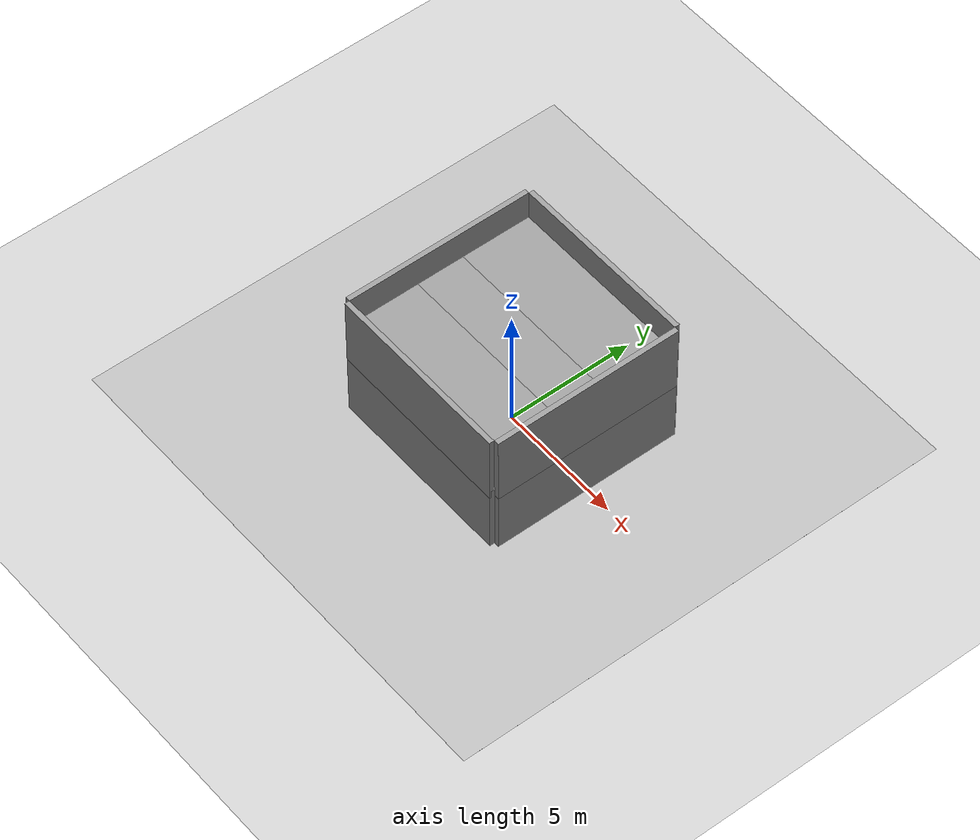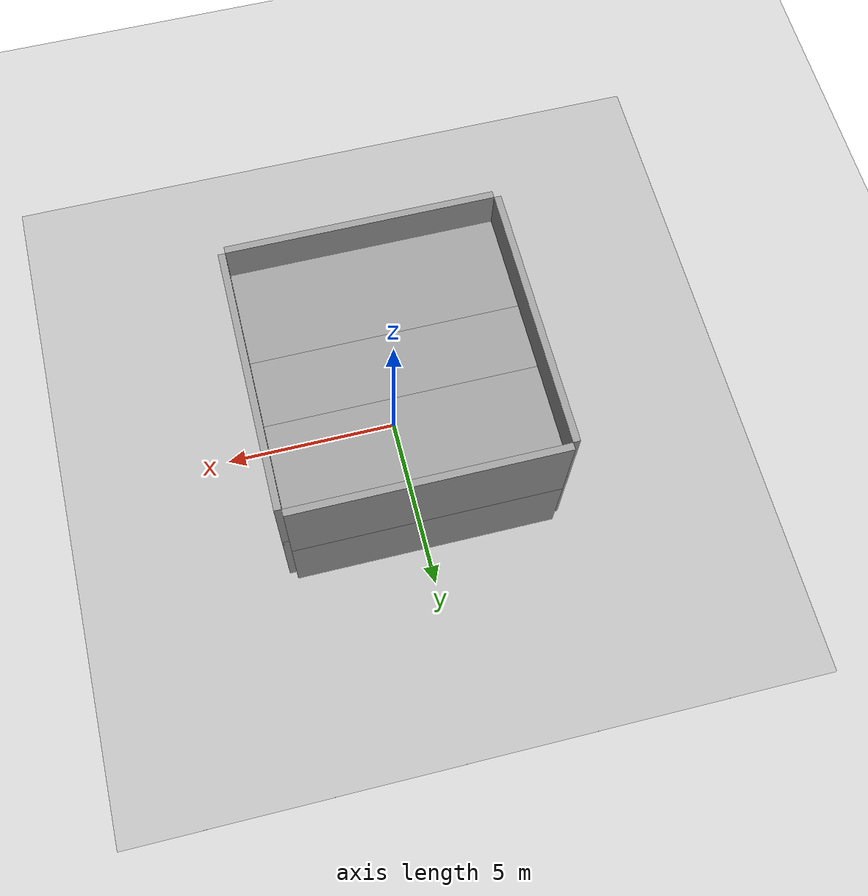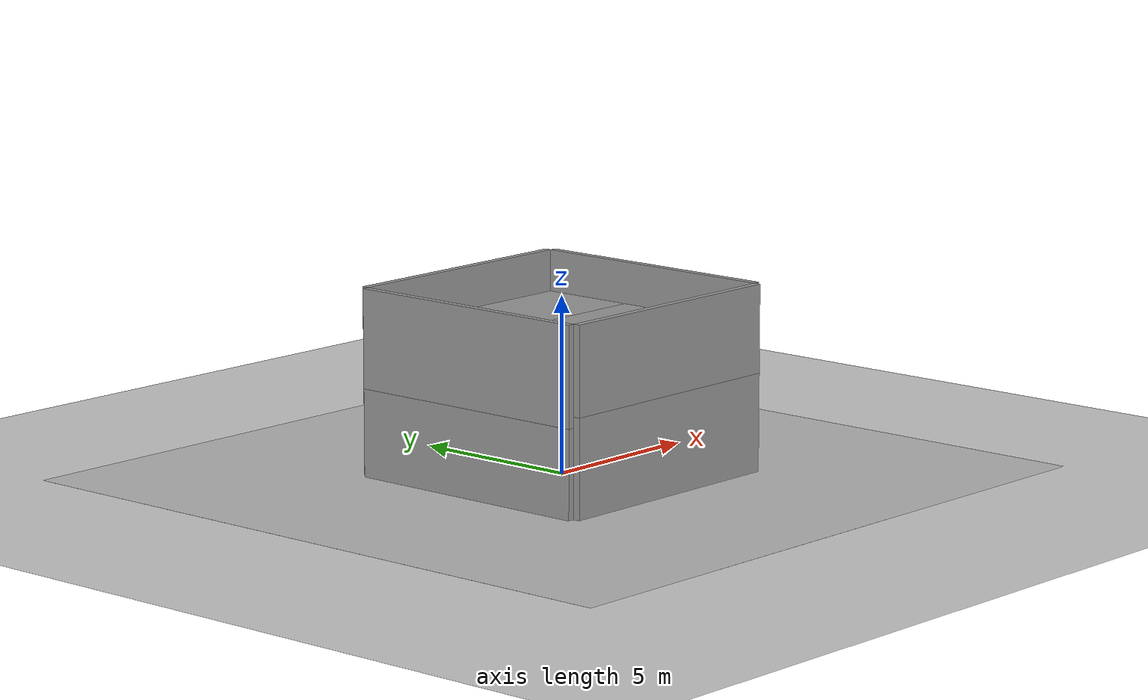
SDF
<sdf version="1.7">
 <world name="default">
  <model name="ground_plane">
   <static>1</static>
   <link name="link">
    <collision name="collision">
     <geometry><plane><normal>0 0 1</normal><size>100 100</size></plane></geometry>
     <surface><friction><ode><mu>100</mu><mu2>50</mu2></ode></friction></surface>
    </collision>
    <visual name="visual">
     <cast_shadows>0</cast_shadows>
     <geometry><plane><normal>0 0 1</normal><size>100 100</size></plane></geometry>
     <material>
      <script><uri>file://media/materials/scripts/gazebo.material</uri><name>Gazebo/Grey</name></script>
     </material>
    </visual>
   </link>
  </model>
  <gravity>0 0 -9.8</gravity>
  <magnetic_field>6e-06 2.3e-05 -4.2e-05</magnetic_field>
  <atmosphere type="adiabatic"/>
  <physics name="default_physics" default="0" type="ode">
   <max_step_size>0.001</max_step_size>
   <real_time_factor>1</real_time_factor>
   <real_time_update_rate>1000</real_time_update_rate>
  </physics>
  <scene><ambient>0.4 0.4 0.4 1</ambient><background>0.7 0.7 0.7 1</background><shadows>1</shadows></scene>
  <spherical_coordinates>
   <surface_model>EARTH_WGS84</surface_model>
   <latitude_deg>0</latitude_deg>
   <longitude_deg>0</longitude_deg>
   <elevation>0</elevation>
   <heading_deg>0</heading_deg>
  </spherical_coordinates>
  <model name="Floor_room">
   <link name="main">
    <pose>0 0 0.01 0 -0 0</pose>
    <collision name="main_Collision"><geometry><box><size>20 20 0.001</size></box></geometry></collision>
    <visual name="main_Visual">
     <geometry><box><size>20 20 0.001</size></box></geometry>
     <material>
      <script>
       <uri>model://Floor_room/materials/scripts</uri>
       <uri>model://Floor_room/materials/textures</uri>
       <name>floor_room</name>
      </script>
     </material>
    </visual>
   </link>
   <static>1</static>
   <pose>-0.11294 0.075022 0 0 -0 0</pose>
  </model>
  <model name="grey_wall">
   <static>1</static>
   <link name="link">
    <pose>0 0 1.4 0 -0 0</pose>
    <collision name="collision"><geometry><box><size>7.5 0.2 2.8</size></box></geometry></collision>
    <visual name="visual">
     <cast_shadows>0</cast_shadows>
     <geometry><box><size>7.5 0.2 2.8</size></box></geometry>
     <material>
      <script>
       <uri>model://grey_wall/materials/scripts</uri>
       <uri>model://grey_wall/materials/textures</uri>
       <name>vrc/grey_wall</name>
      </script>
     </material>
    </visual>
   </link>
   <pose>0 -3.85 0 0 -0 0</pose>
  </model>
  <model name="grey_wall_0">
   <static>1</static>
   <link name="link">
    <pose>0 0 1.4 0 -0 0</pose>
    <collision name="collision"><geometry><box><size>7.5 0.2 2.8</size></box></geometry></collision>
    <visual name="visual">
     <cast_shadows>0</cast_shadows>
     <geometry><box><size>7.5 0.2 2.8</size></box></geometry>
     <material>
      <script>
       <uri>model://grey_wall/materials/scripts</uri>
       <uri>model://grey_wall/materials/textures</uri>
       <name>vrc/grey_wall</name>
      </script>
     </material>
    </visual>
   </link>
   <pose>0 3.85 0 0 -0 0</pose>
  </model>
  <model name="grey_wall_1">
   <static>1</static>
   <link name="link">
    <pose>0 0 1.4 0 -0 0</pose>
    <collision name="collision"><geometry><box><size>7.5 0.2 2.8</size></box></geometry></collision>
    <visual name="visual">
     <cast_shadows>0</cast_shadows>
     <geometry><box><size>7.5 0.2 2.8</size></box></geometry>
     <material>
      <script>
       <uri>model://grey_wall/materials/scripts</uri>
       <uri>model://grey_wall/materials/textures</uri>
       <name>vrc/grey_wall</name>
      </script>
     </material>
    </visual>
   </link>
   <pose>3.85 0 0 0 -0 1.57096</pose>
  </model>
  <model name="grey_wall_2">
   <static>1</static>
   <link name="link">
    <pose>0 0 1.4 0 -0 0</pose>
    <collision name="collision"><geometry><box><size>7.5 0.2 2.8</size></box></geometry></collision>
    <visual name="visual">
     <cast_shadows>0</cast_shadows>
     <geometry><box><size>7.5 0.2 2.8</size></box></geometry>
     <material>
      <script>
       <uri>model://grey_wall/materials/scripts</uri>
       <uri>model://grey_wall/materials/textures</uri>
       <name>vrc/grey_wall</name>
      </script>
     </material>
    </visual>
   </link>
   <pose>-3.85 0 0 0 -0 1.57096</pose>
  </model>
  <light name="user_directional_light_0" type="directional">
   <pose>1.90703 1.7116 1 0 -0 0</pose>
   <diffuse>0.5 0.5 0.5 1</diffuse>
   <specular>0.1 0.1 0.1 1</specular>
   <direction>0.1 0.1 -0.9</direction>
   <attenuation>
    <range>20</range>
    <constant>0.5</constant>
    <linear>0.01</linear>
    <quadratic>0.001</quadratic>
   </attenuation>
   <spot><inner_angle>0</inner_angle><outer_angle>0</outer_angle><falloff>0</falloff></spot>
  </light>
  <light name="user_spot_light_0" type="spot">
   <pose>0.589804 2.02287 1 0 -0 0</pose>
   <diffuse>0.5 0.5 0.5 1</diffuse>
   <specular>0.1 0.1 0.1 1</specular>
   <direction>0 0 -1</direction>
   <attenuation>
    <range>20</range>
    <constant>0.5</constant>
    <linear>0.01</linear>
    <quadratic>0.001</quadratic>
   </attenuation>
   <cast_shadows>0</cast_shadows>
   <spot><inner_angle>0.6</inner_angle><outer_angle>1</outer_angle><falloff>1</falloff></spot>
  </light>
  <model name="grey_wall_3">
   <static>1</static>
   <link name="link">
    <pose>0 0 1.4 0 -0 0</pose>
    <collision name="collision"><geometry><box><size>7.5 0.2 2.8</size></box></geometry></collision>
    <visual name="visual">
     <cast_shadows>0</cast_shadows>
     <geometry><box><size>7.5 0.2 2.8</size></box></geometry>
     <material>
      <script>
       <uri>model://grey_wall/materials/scripts</uri>
       <uri>model://grey_wall/materials/textures</uri>
       <name>vrc/grey_wall</name>
      </script>
     </material>
    </visual>
   </link>
   <pose>0 3.75 4 1.5708 -0 0</pose>
  </model>
  <model name="grey_wall_4">
   <static>1</static>
   <link name="link">
    <pose>0 0 1.4 0 -0 0</pose>
    <collision name="collision"><geometry><box><size>7.5 0.2 2.8</size></box></geometry></collision>
    <visual name="visual">
     <cast_shadows>0</cast_shadows>
     <geometry><box><size>7.5 0.2 2.8</size></box></geometry>
     <material>
      <script>
       <uri>model://grey_wall/materials/scripts</uri>
       <uri>model://grey_wall/materials/textures</uri>
       <name>vrc/grey_wall</name>
      </script>
     </material>
    </visual>
   </link>
   <pose>0 0.95 4 1.5708 -0 0</pose>
  </model>
  <model name="grey_wall_5">
   <static>1</static>
   <link name="link">
    <pose>0 0 1.4 0 -0 0</pose>
    <collision name="collision"><geometry><box><size>7.5 0.2 2.8</size></box></geometry></collision>
    <visual name="visual">
     <cast_shadows>0</cast_shadows>
     <geometry><box><size>7.5 0.2 2.8</size></box></geometry>
     <material>
      <script>
       <uri>model://grey_wall/materials/scripts</uri>
       <uri>model://grey_wall/materials/textures</uri>
       <name>vrc/grey_wall</name>
      </script>
     </material>
    </visual>
   </link>
   <pose>0 -0.95 4 1.5708 -0 0</pose>
  </model>
  <light name="user_spot_light_0_clone" type="spot">
   <pose>-0.383938 -1.13491 1.23081 0 -0 0</pose>
   <diffuse>0.5 0.5 0.5 1</diffuse>
   <specular>0.1 0.1 0.1 1</specular>
   <direction>0 0 -1</direction>
   <attenuation>
    <range>20</range>
    <constant>0.5</constant>
    <linear>0.01</linear>
    <quadratic>0.001</quadratic>
   </attenuation>
   <cast_shadows>0</cast_shadows>
   <spot><inner_angle>0.6</inner_angle><outer_angle>1</outer_angle><falloff>1</falloff></spot>
  </light>
  <light name="user_spot_light_0_clone_1" type="spot">
   <pose>0.615848 -0.668756 1.23081 0 -0 0</pose>
   <diffuse>0.5 0.5 0.5 1</diffuse>
   <specular>0.1 0.1 0.1 1</specular>
   <direction>0 0 -1</direction>
   <attenuation>
    <range>20</range>
    <constant>0.5</constant>
    <linear>0.01</linear>
    <quadratic>0.001</quadratic>
   </attenuation>
   <cast_shadows>0</cast_shadows>
   <spot><inner_angle>0.6</inner_angle><outer_angle>1</outer_angle><falloff>1</falloff></spot>
  </light>
  <light name="user_spot_light_0_clone_0" type="spot">
   <pose>-0.706863 -0.391915 1.23081 0 -0 0</pose>
   <diffuse>0.498039 0.498039 0.498039 1</diffuse>
   <specular>0.0980392 0.0980392 0.0980392 1</specular>
   <direction>0 0 -1</direction>
   <attenuation>
    <range>20</range>
    <constant>0.5</constant>
    <linear>0.01</linear>
    <quadratic>0.001</quadratic>
   </attenuation>
   <cast_shadows>0</cast_shadows>
   <spot><inner_angle>0.6</inner_angle><outer_angle>1</outer_angle><falloff>1</falloff></spot>
  </light>
  <model name="grey_wall_clone">
   <static>1</static>
   <link name="link">
    <pose>0 0 1.4 0 -0 0</pose>
    <collision name="collision"><geometry><box><size>7.5 0.2 2.8</size></box></geometry></collision>
    <visual name="visual">
     <cast_shadows>0</cast_shadows>
     <geometry><box><size>7.5 0.2 2.8</size></box></geometry>
     <material>
      <script>
       <uri>model://grey_wall/materials/scripts</uri>
       <uri>model://grey_wall/materials/textures</uri>
       <name>vrc/grey_wall</name>
      </script>
     </material>
    </visual>
   </link>
   <pose>0 -3.85 2.5 0 -0 0</pose>
  </model>
  <model name="grey_wall_1_clone">
   <static>1</static>
   <link name="link">
    <pose>0 0 1.4 0 -0 0</pose>
    <collision name="collision"><geometry><box><size>7.5 0.2 2.8</size></box></geometry></collision>
    <visual name="visual">
     <cast_shadows>0</cast_shadows>
     <geometry><box><size>7.5 0.2 2.8</size></box></geometry>
     <material>
      <script>
       <uri>model://grey_wall/materials/scripts</uri>
       <uri>model://grey_wall/materials/textures</uri>
       <name>vrc/grey_wall</name>
      </script>
     </material>
    </visual>
   </link>
   <pose>3.85 0 2.5 0 -0 1.57096</pose>
  </model>
  <model name="grey_wall_0_clone">
   <static>1</static>
   <link name="link">
    <pose>0 0 1.4 0 -0 0</pose>
    <collision name="collision"><geometry><box><size>7.5 0.2 2.8</size></box></geometry></collision>
    <visual name="visual">
     <cast_shadows>0</cast_shadows>
     <geometry><box><size>7.5 0.2 2.8</size></box></geometry>
     <material>
      <script>
       <uri>model://grey_wall/materials/scripts</uri>
       <uri>model://grey_wall/materials/textures</uri>
       <name>vrc/grey_wall</name>
      </script>
     </material>
    </visual>
   </link>
   <pose>0 3.85 2.5 0 -0 0</pose>
  </model>
  <model name="grey_wall_2_clone">
   <static>1</static>
   <link name="link">
    <pose>0 0 1.4 0 -0 0</pose>
    <collision name="collision"><geometry><box><size>7.5 0.2 2.8</size></box></geometry></collision>
    <visual name="visual">
     <cast_shadows>0</cast_shadows>
     <geometry><box><size>7.5 0.2 2.8</size></box></geometry>
     <material>
      <script>
       <uri>model://grey_wall/materials/scripts</uri>
       <uri>model://grey_wall/materials/textures</uri>
       <name>vrc/grey_wall</name>
      </script>
     </material>
    </visual>
   </link>
   <pose>-3.85 0 2.5 0 -0 1.57096</pose>
  </model>
  <audio><device>default</device></audio>
  <light name="user_spot_light_0_clone_2" type="spot">
   <pose>0.745533 1.37528 1.23081 0 -0 0</pose>
   <diffuse>0.5 0.5 0.5 1</diffuse>
   <specular>0.1 0.1 0.1 1</specular>
   <direction>0 0 -1</direction>
   <attenuation>
    <range>20</range>
    <constant>0.5</constant>
    <linear>0.01</linear>
    <quadratic>0.001</quadratic>
   </attenuation>
   <cast_shadows>0</cast_shadows>
   <spot><inner_angle>0.6</inner_angle><outer_angle>1</outer_angle><falloff>1</falloff></spot>
  </light>
  <light name="user_spot_light_0_clone_3" type="spot">
   <pose>0.747088 0.126739 1.23081 0 -0 0</pose>
   <diffuse>0.5 0.5 0.5 1</diffuse>
   <specular>0.1 0.1 0.1 1</specular>
   <direction>0 0 -1</direction>
   <attenuation>
    <range>20</range>
    <constant>0.5</constant>
    <linear>0.01</linear>
    <quadratic>0.001</quadratic>
   </attenuation>
   <cast_shadows>0</cast_shadows>
   <spot><inner_angle>0.6</inner_angle><outer_angle>1</outer_angle><falloff>1</falloff></spot>
  </light>
  <light name="user_spot_light_0_clone_4" type="spot">
   <pose>0.744005 -0.291026 1.23081 0 -0 0</pose>
   <diffuse>0.5 0.5 0.5 1</diffuse>
   <specular>0.1 0.1 0.1 1</specular>
   <direction>0 0 -1</direction>
   <attenuation>
    <range>20</range>
    <constant>0.5</constant>
    <linear>0.01</linear>
    <quadratic>0.001</quadratic>
   </attenuation>
   <cast_shadows>0</cast_shadows>
   <spot><inner_angle>0.6</inner_angle><outer_angle>1</outer_angle><falloff>1</falloff></spot>
  </light>
  <light name="user_spot_light_0_clone_5" type="spot">
   <pose>0.761056 -1.18804 1.23081 0 -0 0</pose>
   <diffuse>0.5 0.5 0.5 1</diffuse>
   <specular>0.1 0.1 0.1 1</specular>
   <direction>0 0 -1</direction>
   <attenuation>
    <range>20</range>
    <constant>0.5</constant>
    <linear>0.01</linear>
    <quadratic>0.001</quadratic>
   </attenuation>
   <cast_shadows>0</cast_shadows>
   <spot><inner_angle>0.6</inner_angle><outer_angle>1</outer_angle><falloff>1</falloff></spot>
  </light>
  <light name="user_spot_light_0_clone_6" type="spot">
   <pose>-0.751844 1.22208 1.23081 0 -0 0</pose>
   <diffuse>0.5 0.5 0.5 1</diffuse>
   <specular>0.1 0.1 0.1 1</specular>
   <direction>0 0 -1</direction>
   <attenuation>
    <range>20</range>
    <constant>0.5</constant>
    <linear>0.01</linear>
    <quadratic>0.001</quadratic>
   </attenuation>
   <cast_shadows>0</cast_shadows>
   <spot><inner_angle>0.6</inner_angle><outer_angle>1</outer_angle><falloff>1</falloff></spot>
  </light>
  <light name="user_spot_light_0_clone_7" type="spot">
   <pose>-0.75156 0.239832 1.23081 0 -0 0</pose>
   <diffuse>0.5 0.5 0.5 1</diffuse>
   <specular>0.1 0.1 0.1 1</specular>
   <direction>0 0 -1</direction>
   <attenuation>
    <range>20</range>
    <constant>0.5</constant>
    <linear>0.01</linear>
    <quadratic>0.001</quadratic>
   </attenuation>
   <cast_shadows>0</cast_shadows>
   <spot><inner_angle>0.6</inner_angle><outer_angle>1</outer_angle><falloff>1</falloff></spot>
  </light>
  <light name="user_spot_light_0_clone_8" type="spot">
   <pose>-0.747848 -0.249761 1.23081 0 -0 0</pose>
   <diffuse>0.5 0.5 0.5 1</diffuse>
   <specular>0.1 0.1 0.1 1</specular>
   <direction>0 0 -1</direction>
   <attenuation>
    <range>20</range>
    <constant>0.5</constant>
    <linear>0.01</linear>
    <quadratic>0.001</quadratic>
   </attenuation>
   <cast_shadows>0</cast_shadows>
   <spot><inner_angle>0.6</inner_angle><outer_angle>1</outer_angle><falloff>1</falloff></spot>
  </light>
  <light name="user_spot_light_0_clone_9" type="spot">
   <pose>-0.738937 -1.21718 1.23081 0 -0 0</pose>
   <diffuse>0.5 0.5 0.5 1</diffuse>
   <specular>0.1 0.1 0.1 1</specular>
   <direction>0 0 -1</direction>
   <attenuation>
    <range>20</range>
    <constant>0.5</constant>
    <linear>0.01</linear>
    <quadratic>0.001</quadratic>
   </attenuation>
   <cast_shadows>0</cast_shadows>
   <spot><inner_angle>0.6</inner_angle><outer_angle>1</outer_angle><falloff>1</falloff></spot>
  </light>
 </world>
</sdf>
